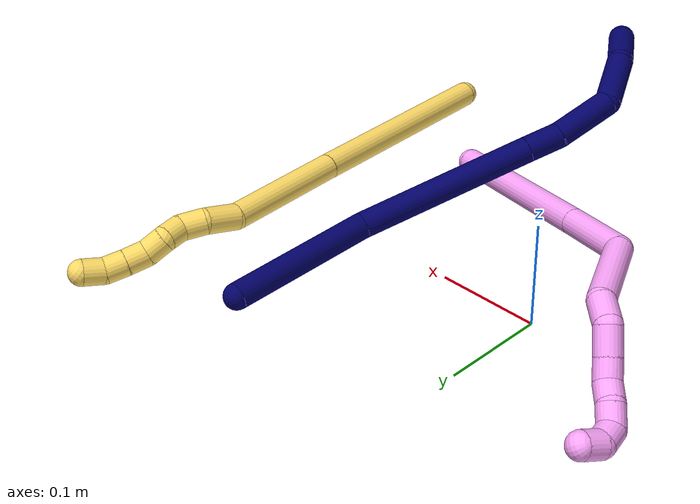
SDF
<sdf version="1.7">
 <world name="default">
  <model name="4">
   <static>0</static>
   <link name="4">
    <collision name="collision-cylinder-e_1_1_4">
     <pose>-0.05752 0.029003 0.070895 -0.388327 -0.644101 0.131037</pose>
     <geometry><cylinder><radius>0.0125</radius><length>0.191582</length></cylinder></geometry>
     <surface>
      <friction><ode><mu>1.16</mu><mu2>1.16</mu2><slip1>0</slip1><slip2>0</slip2></ode></friction>
      <contact><ode><kp>1e+06</kp><kd>1</kd><max_vel>0</max_vel><min_depth>0.001</min_depth></ode></contact>
     </surface>
    </collision>
    <visual name="visual-cylinder-e_1_1_4">
     <pose>-0.05752 0.029003 0.070895 -0.388327 -0.644101 0.131037</pose>
     <geometry><cylinder><radius>0.0125</radius><length>0.191582</length></cylinder></geometry>
     <material><ambient>1 0.65098 0.996078 1</ambient></material>
    </visual>
    <collision name="collision-cylinder-e_2_4_5">
     <pose>-0.136688 0.06893 0.168006 -0.394801 -0.651255 0.134857</pose>
     <geometry><cylinder><radius>0.0125</radius><length>0.071421</length></cylinder></geometry>
     <surface>
      <friction><ode><mu>1.16</mu><mu2>1.16</mu2><slip1>0</slip1><slip2>0</slip2></ode></friction>
      <contact><ode><kp>1e+06</kp><kd>1</kd><max_vel>0</max_vel><min_depth>0.001</min_depth></ode></contact>
     </surface>
    </collision>
    <visual name="visual-cylinder-e_2_4_5">
     <pose>-0.136688 0.06893 0.168006 -0.394801 -0.651255 0.134857</pose>
     <geometry><cylinder><radius>0.0125</radius><length>0.071421</length></cylinder></geometry>
     <material><ambient>1 0.65098 0.996078 1</ambient></material>
    </visual>
    <collision name="collision-cylinder-e_3_5_6">
     <pose>-0.183112 0.11282 0.20162 -1.35006 -0.632771 0.512597</pose>
     <geometry><cylinder><radius>0.0125</radius><length>0.083794</length></cylinder></geometry>
     <surface>
      <friction><ode><mu>1.16</mu><mu2>1.16</mu2><slip1>0</slip1><slip2>0</slip2></ode></friction>
      <contact><ode><kp>1e+06</kp><kd>1</kd><max_vel>0</max_vel><min_depth>0.001</min_depth></ode></contact>
     </surface>
    </collision>
    <visual name="visual-cylinder-e_3_5_6">
     <pose>-0.183112 0.11282 0.20162 -1.35006 -0.632771 0.512597</pose>
     <geometry><cylinder><radius>0.0125</radius><length>0.083794</length></cylinder></geometry>
     <material><ambient>1 0.65098 0.996078 1</ambient></material>
    </visual>
    <collision name="collision-cylinder-e_4_6_7">
     <pose>-0.219328 0.151917 0.213352 -0.955456 -0.989885 0.544987</pose>
     <geometry><cylinder><radius>0.0125</radius><length>0.027366</length></cylinder></geometry>
     <surface>
      <friction><ode><mu>1.16</mu><mu2>1.16</mu2><slip1>0</slip1><slip2>0</slip2></ode></friction>
      <contact><ode><kp>1e+06</kp><kd>1</kd><max_vel>0</max_vel><min_depth>0.001</min_depth></ode></contact>
     </surface>
    </collision>
    <visual name="visual-cylinder-e_4_6_7">
     <pose>-0.219328 0.151917 0.213352 -0.955456 -0.989885 0.544987</pose>
     <geometry><cylinder><radius>0.0125</radius><length>0.027366</length></cylinder></geometry>
     <material><ambient>1 0.65098 0.996078 1</ambient></material>
    </visual>
    <collision name="collision-cylinder-e_5_7_8">
     <pose>-0.243219 0.158774 0.214367 -2.92647 -1.30444 2.86068</pose>
     <geometry><cylinder><radius>0.0125</radius><length>0.025816</length></cylinder></geometry>
     <surface>
      <friction><ode><mu>1.16</mu><mu2>1.16</mu2><slip1>0</slip1><slip2>0</slip2></ode></friction>
      <contact><ode><kp>1e+06</kp><kd>1</kd><max_vel>0</max_vel><min_depth>0.001</min_depth></ode></contact>
     </surface>
    </collision>
    <visual name="visual-cylinder-e_5_7_8">
     <pose>-0.243219 0.158774 0.214367 -2.92647 -1.30444 2.86068</pose>
     <geometry><cylinder><radius>0.0125</radius><length>0.025816</length></cylinder></geometry>
     <material><ambient>1 0.65098 0.996078 1</ambient></material>
    </visual>
    <collision name="collision-cylinder-e_6_8_9">
     <pose>-0.265279 0.16061 0.208482 -2.733 -1.2876 2.60285</pose>
     <geometry><cylinder><radius>0.0125</radius><length>0.020012</length></cylinder></geometry>
     <surface>
      <friction><ode><mu>1.16</mu><mu2>1.16</mu2><slip1>0</slip1><slip2>0</slip2></ode></friction>
      <contact><ode><kp>1e+06</kp><kd>1</kd><max_vel>0</max_vel><min_depth>0.001</min_depth></ode></contact>
     </surface>
    </collision>
    <visual name="visual-cylinder-e_6_8_9">
     <pose>-0.265279 0.16061 0.208482 -2.733 -1.2876 2.60285</pose>
     <geometry><cylinder><radius>0.0125</radius><length>0.020012</length></cylinder></geometry>
     <material><ambient>1 0.65098 0.996078 1</ambient></material>
    </visual>
    <collision name="collision-cylinder-e_7_9_10">
     <pose>-0.283641 0.166108 0.207966 -1.13367 -1.06547 0.718041</pose>
     <geometry><cylinder><radius>0.0125</radius><length>0.020009</length></cylinder></geometry>
     <surface>
      <friction><ode><mu>1.16</mu><mu2>1.16</mu2><slip1>0</slip1><slip2>0</slip2></ode></friction>
      <contact><ode><kp>1e+06</kp><kd>1</kd><max_vel>0</max_vel><min_depth>0.001</min_depth></ode></contact>
     </surface>
    </collision>
    <visual name="visual-cylinder-e_7_9_10">
     <pose>-0.283641 0.166108 0.207966 -1.13367 -1.06547 0.718041</pose>
     <geometry><cylinder><radius>0.0125</radius><length>0.020009</length></cylinder></geometry>
     <material><ambient>1 0.65098 0.996078 1</ambient></material>
    </visual>
    <collision name="collision-cylinder-e_8_10_11">
     <pose>-0.302029 0.173048 0.209202 -1.87968 -1.2996 1.61011</pose>
     <geometry><cylinder><radius>0.0125</radius><length>0.02</length></cylinder></geometry>
     <surface>
      <friction><ode><mu>1.16</mu><mu2>1.16</mu2><slip1>0</slip1><slip2>0</slip2></ode></friction>
      <contact><ode><kp>1e+06</kp><kd>1</kd><max_vel>0</max_vel><min_depth>0.001</min_depth></ode></contact>
     </surface>
    </collision>
    <visual name="visual-cylinder-e_8_10_11">
     <pose>-0.302029 0.173048 0.209202 -1.87968 -1.2996 1.61011</pose>
     <geometry><cylinder><radius>0.0125</radius><length>0.02</length></cylinder></geometry>
     <material><ambient>1 0.65098 0.996078 1</ambient></material>
    </visual>
    <collision name="collision-cylinder-e_9_11_12">
     <pose>-0.316745 0.184208 0.208077 -1.60688 -0.533016 0.551645</pose>
     <geometry><cylinder><radius>0.0125</radius><length>0.02</length></cylinder></geometry>
     <surface>
      <friction><ode><mu>1.16</mu><mu2>1.16</mu2><slip1>0</slip1><slip2>0</slip2></ode></friction>
      <contact><ode><kp>1e+06</kp><kd>1</kd><max_vel>0</max_vel><min_depth>0.001</min_depth></ode></contact>
     </surface>
    </collision>
    <visual name="visual-cylinder-e_9_11_12">
     <pose>-0.316745 0.184208 0.208077 -1.60688 -0.533016 0.551645</pose>
     <geometry><cylinder><radius>0.0125</radius><length>0.02</length></cylinder></geometry>
     <material><ambient>1 0.65098 0.996078 1</ambient></material>
    </visual>
    <collision name="collision-cylinder-e_10_12_2">
     <pose>-0.321059 0.20252 0.205481 -1.80207 0.076853 -0.097024</pose>
     <geometry><cylinder><radius>0.0125</radius><length>0.02</length></cylinder></geometry>
     <surface>
      <friction><ode><mu>1.16</mu><mu2>1.16</mu2><slip1>0</slip1><slip2>0</slip2></ode></friction>
      <contact><ode><kp>1e+06</kp><kd>1</kd><max_vel>0</max_vel><min_depth>0.001</min_depth></ode></contact>
     </surface>
    </collision>
    <visual name="visual-cylinder-e_10_12_2">
     <pose>-0.321059 0.20252 0.205481 -1.80207 0.076853 -0.097024</pose>
     <geometry><cylinder><radius>0.0125</radius><length>0.02</length></cylinder></geometry>
     <material><ambient>1 0.65098 0.996078 1</ambient></material>
    </visual>
    <collision name="collision-sphere-2">
     <pose>-0.320291 0.212226 0.203196 0 -0 0</pose>
     <geometry><sphere><radius>0.0125</radius></sphere></geometry>
     <surface>
      <friction><ode><mu>1.16</mu><mu2>1.16</mu2><slip1>0</slip1><slip2>0</slip2></ode></friction>
      <contact><ode><kp>1e+06</kp><kd>1</kd><max_vel>0</max_vel><min_depth>0.001</min_depth></ode></contact>
     </surface>
    </collision>
    <visual name="visual-sphere-2">
     <pose>-0.320291 0.212226 0.203196 0 -0 0</pose>
     <geometry><sphere><radius>0.0125</radius></sphere></geometry>
     <material><ambient>1 0.65098 0.996078 1</ambient></material>
    </visual>
    <collision name="collision-sphere-12">
     <pose>-0.321827 0.192815 0.207766 0 -0 0</pose>
     <geometry><sphere><radius>0.0125</radius></sphere></geometry>
     <surface>
      <friction><ode><mu>1.16</mu><mu2>1.16</mu2><slip1>0</slip1><slip2>0</slip2></ode></friction>
      <contact><ode><kp>1e+06</kp><kd>1</kd><max_vel>0</max_vel><min_depth>0.001</min_depth></ode></contact>
     </surface>
    </collision>
    <visual name="visual-sphere-12">
     <pose>-0.321827 0.192815 0.207766 0 -0 0</pose>
     <geometry><sphere><radius>0.0125</radius></sphere></geometry>
     <material><ambient>1 0.65098 0.996078 1</ambient></material>
    </visual>
    <collision name="collision-sphere-11">
     <pose>-0.311664 0.175601 0.208388 0 -0 0</pose>
     <geometry><sphere><radius>0.0125</radius></sphere></geometry>
     <surface>
      <friction><ode><mu>1.16</mu><mu2>1.16</mu2><slip1>0</slip1><slip2>0</slip2></ode></friction>
      <contact><ode><kp>1e+06</kp><kd>1</kd><max_vel>0</max_vel><min_depth>0.001</min_depth></ode></contact>
     </surface>
    </collision>
    <visual name="visual-sphere-11">
     <pose>-0.311664 0.175601 0.208388 0 -0 0</pose>
     <geometry><sphere><radius>0.0125</radius></sphere></geometry>
     <material><ambient>1 0.65098 0.996078 1</ambient></material>
    </visual>
    <collision name="collision-sphere-10">
     <pose>-0.292395 0.170496 0.210017 0 -0 0</pose>
     <geometry><sphere><radius>0.0125</radius></sphere></geometry>
     <surface>
      <friction><ode><mu>1.16</mu><mu2>1.16</mu2><slip1>0</slip1><slip2>0</slip2></ode></friction>
      <contact><ode><kp>1e+06</kp><kd>1</kd><max_vel>0</max_vel><min_depth>0.001</min_depth></ode></contact>
     </surface>
    </collision>
    <visual name="visual-sphere-10">
     <pose>-0.292395 0.170496 0.210017 0 -0 0</pose>
     <geometry><sphere><radius>0.0125</radius></sphere></geometry>
     <material><ambient>1 0.65098 0.996078 1</ambient></material>
    </visual>
    <collision name="collision-sphere-9">
     <pose>-0.274886 0.161721 0.205916 0 -0 0</pose>
     <geometry><sphere><radius>0.0125</radius></sphere></geometry>
     <surface>
      <friction><ode><mu>1.16</mu><mu2>1.16</mu2><slip1>0</slip1><slip2>0</slip2></ode></friction>
      <contact><ode><kp>1e+06</kp><kd>1</kd><max_vel>0</max_vel><min_depth>0.001</min_depth></ode></contact>
     </surface>
    </collision>
    <visual name="visual-sphere-9">
     <pose>-0.274886 0.161721 0.205916 0 -0 0</pose>
     <geometry><sphere><radius>0.0125</radius></sphere></geometry>
     <material><ambient>1 0.65098 0.996078 1</ambient></material>
    </visual>
    <collision name="collision-sphere-4">
     <pose>-0.115041 0.058006 0.14179 0 -0 0</pose>
     <geometry><sphere><radius>0.0125</radius></sphere></geometry>
     <surface>
      <friction><ode><mu>1.16</mu><mu2>1.16</mu2><slip1>0</slip1><slip2>0</slip2></ode></friction>
      <contact><ode><kp>1e+06</kp><kd>1</kd><max_vel>0</max_vel><min_depth>0.001</min_depth></ode></contact>
     </surface>
    </collision>
    <visual name="visual-sphere-4">
     <pose>-0.115041 0.058006 0.14179 0 -0 0</pose>
     <geometry><sphere><radius>0.0125</radius></sphere></geometry>
     <material><ambient>1 0.65098 0.996078 1</ambient></material>
    </visual>
    <collision name="collision-sphere-1">
     <geometry><sphere><radius>0.0125</radius></sphere></geometry>
     <surface>
      <friction><ode><mu>1.16</mu><mu2>1.16</mu2><slip1>0</slip1><slip2>0</slip2></ode></friction>
      <contact><ode><kp>1e+06</kp><kd>1</kd><max_vel>0</max_vel><min_depth>0.001</min_depth></ode></contact>
     </surface>
    </collision>
    <visual name="visual-sphere-1">
     <geometry><sphere><radius>0.0125</radius></sphere></geometry>
     <material><ambient>1 0.65098 0.996078 1</ambient></material>
    </visual>
    <collision name="collision-sphere-8">
     <pose>-0.255671 0.159499 0.211048 0 -0 0</pose>
     <geometry><sphere><radius>0.0125</radius></sphere></geometry>
     <surface>
      <friction><ode><mu>1.16</mu><mu2>1.16</mu2><slip1>0</slip1><slip2>0</slip2></ode></friction>
      <contact><ode><kp>1e+06</kp><kd>1</kd><max_vel>0</max_vel><min_depth>0.001</min_depth></ode></contact>
     </surface>
    </collision>
    <visual name="visual-sphere-8">
     <pose>-0.255671 0.159499 0.211048 0 -0 0</pose>
     <geometry><sphere><radius>0.0125</radius></sphere></geometry>
     <material><ambient>1 0.65098 0.996078 1</ambient></material>
    </visual>
    <collision name="collision-sphere-5">
     <pose>-0.158335 0.079854 0.194223 0 -0 0</pose>
     <geometry><sphere><radius>0.0125</radius></sphere></geometry>
     <surface>
      <friction><ode><mu>1.16</mu><mu2>1.16</mu2><slip1>0</slip1><slip2>0</slip2></ode></friction>
      <contact><ode><kp>1e+06</kp><kd>1</kd><max_vel>0</max_vel><min_depth>0.001</min_depth></ode></contact>
     </surface>
    </collision>
    <visual name="visual-sphere-5">
     <pose>-0.158335 0.079854 0.194223 0 -0 0</pose>
     <geometry><sphere><radius>0.0125</radius></sphere></geometry>
     <material><ambient>1 0.65098 0.996078 1</ambient></material>
    </visual>
    <collision name="collision-sphere-6">
     <pose>-0.207889 0.145785 0.209017 0 -0 0</pose>
     <geometry><sphere><radius>0.0125</radius></sphere></geometry>
     <surface>
      <friction><ode><mu>1.16</mu><mu2>1.16</mu2><slip1>0</slip1><slip2>0</slip2></ode></friction>
      <contact><ode><kp>1e+06</kp><kd>1</kd><max_vel>0</max_vel><min_depth>0.001</min_depth></ode></contact>
     </surface>
    </collision>
    <visual name="visual-sphere-6">
     <pose>-0.207889 0.145785 0.209017 0 -0 0</pose>
     <geometry><sphere><radius>0.0125</radius></sphere></geometry>
     <material><ambient>1 0.65098 0.996078 1</ambient></material>
    </visual>
    <collision name="collision-sphere-7">
     <pose>-0.230766 0.158048 0.217686 0 -0 0</pose>
     <geometry><sphere><radius>0.0125</radius></sphere></geometry>
     <surface>
      <friction><ode><mu>1.16</mu><mu2>1.16</mu2><slip1>0</slip1><slip2>0</slip2></ode></friction>
      <contact><ode><kp>1e+06</kp><kd>1</kd><max_vel>0</max_vel><min_depth>0.001</min_depth></ode></contact>
     </surface>
    </collision>
    <visual name="visual-sphere-7">
     <pose>-0.230766 0.158048 0.217686 0 -0 0</pose>
     <geometry><sphere><radius>0.0125</radius></sphere></geometry>
     <material><ambient>1 0.65098 0.996078 1</ambient></material>
    </visual>
    <inertial>
     <pose>-0.156376 0.091846 0.149274 0 -0 0</pose>
     <mass>0.5</mass>
     <inertia><ixx>0.0006</ixx><ixy>0</ixy><ixz>0</ixz><iyy>0.000732</iyy><iyz>0</iyz><izz>0.000196</izz></inertia>
    </inertial>
   </link>
   <pose>0.204087 -0.155468 0.012459 0.586453 -0.717573 -0.516094</pose>
  </model>
  <model name="5">
   <static>0</static>
   <link name="5">
    <collision name="collision-cylinder-e_1_1_4">
     <pose>0.074329 0.047886 -0.064728 -2.50465 0.745466 -1.74054</pose>
     <geometry><cylinder><radius>0.0125</radius><length>0.219158</length></cylinder></geometry>
     <surface>
      <friction><ode><mu>1.16</mu><mu2>1.16</mu2><slip1>0</slip1><slip2>0</slip2></ode></friction>
      <contact><ode><kp>1e+06</kp><kd>1</kd><max_vel>0</max_vel><min_depth>0.001</min_depth></ode></contact>
     </surface>
    </collision>
    <visual name="visual-cylinder-e_1_1_4">
     <pose>0.074329 0.047886 -0.064728 -2.50465 0.745466 -1.74054</pose>
     <geometry><cylinder><radius>0.0125</radius><length>0.219158</length></cylinder></geometry>
     <material><ambient>1 0.858824 0.4 1</ambient></material>
    </visual>
    <collision name="collision-cylinder-e_2_4_5">
     <pose>0.189449 0.124649 -0.165294 -2.46334 0.725193 -1.64347</pose>
     <geometry><cylinder><radius>0.0125</radius><length>0.123</length></cylinder></geometry>
     <surface>
      <friction><ode><mu>1.16</mu><mu2>1.16</mu2><slip1>0</slip1><slip2>0</slip2></ode></friction>
      <contact><ode><kp>1e+06</kp><kd>1</kd><max_vel>0</max_vel><min_depth>0.001</min_depth></ode></contact>
     </surface>
    </collision>
    <visual name="visual-cylinder-e_2_4_5">
     <pose>0.189449 0.124649 -0.165294 -2.46334 0.725193 -1.64347</pose>
     <geometry><cylinder><radius>0.0125</radius><length>0.123</length></cylinder></geometry>
     <material><ambient>1 0.858824 0.4 1</ambient></material>
    </visual>
    <collision name="collision-cylinder-e_3_5_6">
     <pose>0.237025 0.160446 -0.214024 -2.64901 0.434123 -1.44021</pose>
     <geometry><cylinder><radius>0.0125</radius><length>0.032256</length></cylinder></geometry>
     <surface>
      <friction><ode><mu>1.16</mu><mu2>1.16</mu2><slip1>0</slip1><slip2>0</slip2></ode></friction>
      <contact><ode><kp>1e+06</kp><kd>1</kd><max_vel>0</max_vel><min_depth>0.001</min_depth></ode></contact>
     </surface>
    </collision>
    <visual name="visual-cylinder-e_3_5_6">
     <pose>0.237025 0.160446 -0.214024 -2.64901 0.434123 -1.44021</pose>
     <geometry><cylinder><radius>0.0125</radius><length>0.032256</length></cylinder></geometry>
     <material><ambient>1 0.858824 0.4 1</ambient></material>
    </visual>
    <collision name="collision-cylinder-e_4_6_7">
     <pose>0.246612 0.175358 -0.235014 -2.36278 0.24159 -0.575203</pose>
     <geometry><cylinder><radius>0.0125</radius><length>0.023435</length></cylinder></geometry>
     <surface>
      <friction><ode><mu>1.16</mu><mu2>1.16</mu2><slip1>0</slip1><slip2>0</slip2></ode></friction>
      <contact><ode><kp>1e+06</kp><kd>1</kd><max_vel>0</max_vel><min_depth>0.001</min_depth></ode></contact>
     </surface>
    </collision>
    <visual name="visual-cylinder-e_4_6_7">
     <pose>0.246612 0.175358 -0.235014 -2.36278 0.24159 -0.575203</pose>
     <geometry><cylinder><radius>0.0125</radius><length>0.023435</length></cylinder></geometry>
     <material><ambient>1 0.858824 0.4 1</ambient></material>
    </visual>
    <collision name="collision-cylinder-e_5_7_8">
     <pose>0.25657 0.188376 -0.248149 -2.35723 0.788171 -1.57618</pose>
     <geometry><cylinder><radius>0.0125</radius><length>0.020182</length></cylinder></geometry>
     <surface>
      <friction><ode><mu>1.16</mu><mu2>1.16</mu2><slip1>0</slip1><slip2>0</slip2></ode></friction>
      <contact><ode><kp>1e+06</kp><kd>1</kd><max_vel>0</max_vel><min_depth>0.001</min_depth></ode></contact>
     </surface>
    </collision>
    <visual name="visual-cylinder-e_5_7_8">
     <pose>0.25657 0.188376 -0.248149 -2.35723 0.788171 -1.57618</pose>
     <geometry><cylinder><radius>0.0125</radius><length>0.020182</length></cylinder></geometry>
     <material><ambient>1 0.858824 0.4 1</ambient></material>
    </visual>
    <collision name="collision-cylinder-e_6_8_9">
     <pose>0.266111 0.202845 -0.256055 -1.86583 0.237199 -0.318776</pose>
     <geometry><cylinder><radius>0.0125</radius><length>0.020308</length></cylinder></geometry>
     <surface>
      <friction><ode><mu>1.16</mu><mu2>1.16</mu2><slip1>0</slip1><slip2>0</slip2></ode></friction>
      <contact><ode><kp>1e+06</kp><kd>1</kd><max_vel>0</max_vel><min_depth>0.001</min_depth></ode></contact>
     </surface>
    </collision>
    <visual name="visual-cylinder-e_6_8_9">
     <pose>0.266111 0.202845 -0.256055 -1.86583 0.237199 -0.318776</pose>
     <geometry><cylinder><radius>0.0125</radius><length>0.020308</length></cylinder></geometry>
     <material><ambient>1 0.858824 0.4 1</ambient></material>
    </visual>
    <collision name="collision-cylinder-e_7_9_10">
     <pose>0.271912 0.22005 -0.264937 -2.22985 0.334715 -0.663618</pose>
     <geometry><cylinder><radius>0.0125</radius><length>0.02079</length></cylinder></geometry>
     <surface>
      <friction><ode><mu>1.16</mu><mu2>1.16</mu2><slip1>0</slip1><slip2>0</slip2></ode></friction>
      <contact><ode><kp>1e+06</kp><kd>1</kd><max_vel>0</max_vel><min_depth>0.001</min_depth></ode></contact>
     </surface>
    </collision>
    <visual name="visual-cylinder-e_7_9_10">
     <pose>0.271912 0.22005 -0.264937 -2.22985 0.334715 -0.663618</pose>
     <geometry><cylinder><radius>0.0125</radius><length>0.02079</length></cylinder></geometry>
     <material><ambient>1 0.858824 0.4 1</ambient></material>
    </visual>
    <collision name="collision-cylinder-e_8_10_11">
     <pose>0.278278 0.235321 -0.277228 -2.26718 0.292822 -0.611269</pose>
     <geometry><cylinder><radius>0.0125</radius><length>0.020448</length></cylinder></geometry>
     <surface>
      <friction><ode><mu>1.16</mu><mu2>1.16</mu2><slip1>0</slip1><slip2>0</slip2></ode></friction>
      <contact><ode><kp>1e+06</kp><kd>1</kd><max_vel>0</max_vel><min_depth>0.001</min_depth></ode></contact>
     </surface>
    </collision>
    <visual name="visual-cylinder-e_8_10_11">
     <pose>0.278278 0.235321 -0.277228 -2.26718 0.292822 -0.611269</pose>
     <geometry><cylinder><radius>0.0125</radius><length>0.020448</length></cylinder></geometry>
     <material><ambient>1 0.858824 0.4 1</ambient></material>
    </visual>
    <collision name="collision-cylinder-e_9_11_2">
     <pose>0.283519 0.247959 -0.292036 -2.60026 0.226118 -0.776823</pose>
     <geometry><cylinder><radius>0.0125</radius><length>0.020424</length></cylinder></geometry>
     <surface>
      <friction><ode><mu>1.16</mu><mu2>1.16</mu2><slip1>0</slip1><slip2>0</slip2></ode></friction>
      <contact><ode><kp>1e+06</kp><kd>1</kd><max_vel>0</max_vel><min_depth>0.001</min_depth></ode></contact>
     </surface>
    </collision>
    <visual name="visual-cylinder-e_9_11_2">
     <pose>0.283519 0.247959 -0.292036 -2.60026 0.226118 -0.776823</pose>
     <geometry><cylinder><radius>0.0125</radius><length>0.020424</length></cylinder></geometry>
     <material><ambient>1 0.858824 0.4 1</ambient></material>
    </visual>
    <collision name="collision-sphere-2">
     <pose>0.285808 0.253087 -0.300566 0 -0 0</pose>
     <geometry><sphere><radius>0.0125</radius></sphere></geometry>
     <surface>
      <friction><ode><mu>1.16</mu><mu2>1.16</mu2><slip1>0</slip1><slip2>0</slip2></ode></friction>
      <contact><ode><kp>1e+06</kp><kd>1</kd><max_vel>0</max_vel><min_depth>0.001</min_depth></ode></contact>
     </surface>
    </collision>
    <visual name="visual-sphere-2">
     <pose>0.285808 0.253087 -0.300566 0 -0 0</pose>
     <geometry><sphere><radius>0.0125</radius></sphere></geometry>
     <material><ambient>1 0.858824 0.4 1</ambient></material>
    </visual>
    <collision name="collision-sphere-11">
     <pose>0.281229 0.242831 -0.283507 0 -0 0</pose>
     <geometry><sphere><radius>0.0125</radius></sphere></geometry>
     <surface>
      <friction><ode><mu>1.16</mu><mu2>1.16</mu2><slip1>0</slip1><slip2>0</slip2></ode></friction>
      <contact><ode><kp>1e+06</kp><kd>1</kd><max_vel>0</max_vel><min_depth>0.001</min_depth></ode></contact>
     </surface>
    </collision>
    <visual name="visual-sphere-11">
     <pose>0.281229 0.242831 -0.283507 0 -0 0</pose>
     <geometry><sphere><radius>0.0125</radius></sphere></geometry>
     <material><ambient>1 0.858824 0.4 1</ambient></material>
    </visual>
    <collision name="collision-sphere-10">
     <pose>0.275326 0.227811 -0.270949 0 -0 0</pose>
     <geometry><sphere><radius>0.0125</radius></sphere></geometry>
     <surface>
      <friction><ode><mu>1.16</mu><mu2>1.16</mu2><slip1>0</slip1><slip2>0</slip2></ode></friction>
      <contact><ode><kp>1e+06</kp><kd>1</kd><max_vel>0</max_vel><min_depth>0.001</min_depth></ode></contact>
     </surface>
    </collision>
    <visual name="visual-sphere-10">
     <pose>0.275326 0.227811 -0.270949 0 -0 0</pose>
     <geometry><sphere><radius>0.0125</radius></sphere></geometry>
     <material><ambient>1 0.858824 0.4 1</ambient></material>
    </visual>
    <collision name="collision-sphere-9">
     <pose>0.268497 0.212288 -0.258925 0 -0 0</pose>
     <geometry><sphere><radius>0.0125</radius></sphere></geometry>
     <surface>
      <friction><ode><mu>1.16</mu><mu2>1.16</mu2><slip1>0</slip1><slip2>0</slip2></ode></friction>
      <contact><ode><kp>1e+06</kp><kd>1</kd><max_vel>0</max_vel><min_depth>0.001</min_depth></ode></contact>
     </surface>
    </collision>
    <visual name="visual-sphere-9">
     <pose>0.268497 0.212288 -0.258925 0 -0 0</pose>
     <geometry><sphere><radius>0.0125</radius></sphere></geometry>
     <material><ambient>1 0.858824 0.4 1</ambient></material>
    </visual>
    <collision name="collision-sphere-4">
     <pose>0.148658 0.095772 -0.129456 0 -0 0</pose>
     <geometry><sphere><radius>0.0125</radius></sphere></geometry>
     <surface>
      <friction><ode><mu>1.16</mu><mu2>1.16</mu2><slip1>0</slip1><slip2>0</slip2></ode></friction>
      <contact><ode><kp>1e+06</kp><kd>1</kd><max_vel>0</max_vel><min_depth>0.001</min_depth></ode></contact>
     </surface>
    </collision>
    <visual name="visual-sphere-4">
     <pose>0.148658 0.095772 -0.129456 0 -0 0</pose>
     <geometry><sphere><radius>0.0125</radius></sphere></geometry>
     <material><ambient>1 0.858824 0.4 1</ambient></material>
    </visual>
    <collision name="collision-sphere-1">
     <geometry><sphere><radius>0.0125</radius></sphere></geometry>
     <surface>
      <friction><ode><mu>1.16</mu><mu2>1.16</mu2><slip1>0</slip1><slip2>0</slip2></ode></friction>
      <contact><ode><kp>1e+06</kp><kd>1</kd><max_vel>0</max_vel><min_depth>0.001</min_depth></ode></contact>
     </surface>
    </collision>
    <visual name="visual-sphere-1">
     <geometry><sphere><radius>0.0125</radius></sphere></geometry>
     <material><ambient>1 0.858824 0.4 1</ambient></material>
    </visual>
    <collision name="collision-sphere-8">
     <pose>0.263725 0.193402 -0.253185 0 -0 0</pose>
     <geometry><sphere><radius>0.0125</radius></sphere></geometry>
     <surface>
      <friction><ode><mu>1.16</mu><mu2>1.16</mu2><slip1>0</slip1><slip2>0</slip2></ode></friction>
      <contact><ode><kp>1e+06</kp><kd>1</kd><max_vel>0</max_vel><min_depth>0.001</min_depth></ode></contact>
     </surface>
    </collision>
    <visual name="visual-sphere-8">
     <pose>0.263725 0.193402 -0.253185 0 -0 0</pose>
     <geometry><sphere><radius>0.0125</radius></sphere></geometry>
     <material><ambient>1 0.858824 0.4 1</ambient></material>
    </visual>
    <collision name="collision-sphere-5">
     <pose>0.230241 0.153527 -0.201132 0 -0 0</pose>
     <geometry><sphere><radius>0.0125</radius></sphere></geometry>
     <surface>
      <friction><ode><mu>1.16</mu><mu2>1.16</mu2><slip1>0</slip1><slip2>0</slip2></ode></friction>
      <contact><ode><kp>1e+06</kp><kd>1</kd><max_vel>0</max_vel><min_depth>0.001</min_depth></ode></contact>
     </surface>
    </collision>
    <visual name="visual-sphere-5">
     <pose>0.230241 0.153527 -0.201132 0 -0 0</pose>
     <geometry><sphere><radius>0.0125</radius></sphere></geometry>
     <material><ambient>1 0.858824 0.4 1</ambient></material>
    </visual>
    <collision name="collision-sphere-6">
     <pose>0.243808 0.167366 -0.226916 0 -0 0</pose>
     <geometry><sphere><radius>0.0125</radius></sphere></geometry>
     <surface>
      <friction><ode><mu>1.16</mu><mu2>1.16</mu2><slip1>0</slip1><slip2>0</slip2></ode></friction>
      <contact><ode><kp>1e+06</kp><kd>1</kd><max_vel>0</max_vel><min_depth>0.001</min_depth></ode></contact>
     </surface>
    </collision>
    <visual name="visual-sphere-6">
     <pose>0.243808 0.167366 -0.226916 0 -0 0</pose>
     <geometry><sphere><radius>0.0125</radius></sphere></geometry>
     <material><ambient>1 0.858824 0.4 1</ambient></material>
    </visual>
    <collision name="collision-sphere-7">
     <pose>0.249415 0.18335 -0.243112 0 -0 0</pose>
     <geometry><sphere><radius>0.0125</radius></sphere></geometry>
     <surface>
      <friction><ode><mu>1.16</mu><mu2>1.16</mu2><slip1>0</slip1><slip2>0</slip2></ode></friction>
      <contact><ode><kp>1e+06</kp><kd>1</kd><max_vel>0</max_vel><min_depth>0.001</min_depth></ode></contact>
     </surface>
    </collision>
    <visual name="visual-sphere-7">
     <pose>0.249415 0.18335 -0.243112 0 -0 0</pose>
     <geometry><sphere><radius>0.0125</radius></sphere></geometry>
     <material><ambient>1 0.858824 0.4 1</ambient></material>
    </visual>
    <inertial>
     <pose>0.161466 0.114967 -0.148554 0 -0 0</pose>
     <mass>0.5</mass>
     <inertia>
      <ixx>-0.000859</ixx>
      <ixy>0</ixy>
      <ixz>0</ixz>
      <iyy>-0.000204</iyy>
      <iyz>0</iyz>
      <izz>-0.001206</izz>
     </inertia>
    </inertial>
   </link>
   <pose>0.295366 -0.24842 0.01988 -2.26301 0.005678 2.45924</pose>
  </model>
  <model name="7">
   <static>0</static>
   <link name="7">
    <collision name="collision-cylinder-e_1_1_4">
     <pose>-0.020251 -0.069093 -0.006422 1.66348 -0.283957 -0.311151</pose>
     <geometry><cylinder><radius>0.0125</radius><length>0.144571</length></cylinder></geometry>
     <surface>
      <friction><ode><mu>1.16</mu><mu2>1.16</mu2><slip1>0</slip1><slip2>0</slip2></ode></friction>
      <contact><ode><kp>1e+06</kp><kd>1</kd><max_vel>0</max_vel><min_depth>0.001</min_depth></ode></contact>
     </surface>
    </collision>
    <visual name="visual-cylinder-e_1_1_4">
     <pose>-0.020251 -0.069093 -0.006422 1.66348 -0.283957 -0.311151</pose>
     <geometry><cylinder><radius>0.0125</radius><length>0.144571</length></cylinder></geometry>
     <material><ambient>0.003922 0 0.403922 1</ambient></material>
    </visual>
    <collision name="collision-cylinder-e_2_4_5">
     <pose>-0.093062 -0.205007 -0.025154 1.75296 -0.658405 -0.778732</pose>
     <geometry><cylinder><radius>0.0125</radius><length>0.171803</length></cylinder></geometry>
     <surface>
      <friction><ode><mu>1.16</mu><mu2>1.16</mu2><slip1>0</slip1><slip2>0</slip2></ode></friction>
      <contact><ode><kp>1e+06</kp><kd>1</kd><max_vel>0</max_vel><min_depth>0.001</min_depth></ode></contact>
     </surface>
    </collision>
    <visual name="visual-cylinder-e_2_4_5">
     <pose>-0.093062 -0.205007 -0.025154 1.75296 -0.658405 -0.778732</pose>
     <geometry><cylinder><radius>0.0125</radius><length>0.171803</length></cylinder></geometry>
     <material><ambient>0.003922 0 0.403922 1</ambient></material>
    </visual>
    <collision name="collision-cylinder-e_3_5_6">
     <pose>-0.156063 -0.285164 -0.040091 1.76537 -0.65504 -0.783747</pose>
     <geometry><cylinder><radius>0.0125</radius><length>0.03428</length></cylinder></geometry>
     <surface>
      <friction><ode><mu>1.16</mu><mu2>1.16</mu2><slip1>0</slip1><slip2>0</slip2></ode></friction>
      <contact><ode><kp>1e+06</kp><kd>1</kd><max_vel>0</max_vel><min_depth>0.001</min_depth></ode></contact>
     </surface>
    </collision>
    <visual name="visual-cylinder-e_3_5_6">
     <pose>-0.156063 -0.285164 -0.040091 1.76537 -0.65504 -0.783747</pose>
     <geometry><cylinder><radius>0.0125</radius><length>0.03428</length></cylinder></geometry>
     <material><ambient>0.003922 0 0.403922 1</ambient></material>
    </visual>
    <collision name="collision-cylinder-e_4_6_7">
     <pose>-0.184337 -0.320994 -0.042249 1.54992 -0.670225 -0.657364</pose>
     <geometry><cylinder><radius>0.0125</radius><length>0.057417</length></cylinder></geometry>
     <surface>
      <friction><ode><mu>1.16</mu><mu2>1.16</mu2><slip1>0</slip1><slip2>0</slip2></ode></friction>
      <contact><ode><kp>1e+06</kp><kd>1</kd><max_vel>0</max_vel><min_depth>0.001</min_depth></ode></contact>
     </surface>
    </collision>
    <visual name="visual-cylinder-e_4_6_7">
     <pose>-0.184337 -0.320994 -0.042249 1.54992 -0.670225 -0.657364</pose>
     <geometry><cylinder><radius>0.0125</radius><length>0.057417</length></cylinder></geometry>
     <material><ambient>0.003922 0 0.403922 1</ambient></material>
    </visual>
    <collision name="collision-cylinder-e_5_7_8">
     <pose>-0.206316 -0.364829 -0.029366 1.04398 -0.166372 -0.095846</pose>
     <geometry><cylinder><radius>0.0125</radius><length>0.05007</length></cylinder></geometry>
     <surface>
      <friction><ode><mu>1.16</mu><mu2>1.16</mu2><slip1>0</slip1><slip2>0</slip2></ode></friction>
      <contact><ode><kp>1e+06</kp><kd>1</kd><max_vel>0</max_vel><min_depth>0.001</min_depth></ode></contact>
     </surface>
    </collision>
    <visual name="visual-cylinder-e_5_7_8">
     <pose>-0.206316 -0.364829 -0.029366 1.04398 -0.166372 -0.095846</pose>
     <geometry><cylinder><radius>0.0125</radius><length>0.05007</length></cylinder></geometry>
     <material><ambient>0.003922 0 0.403922 1</ambient></material>
    </visual>
    <collision name="collision-cylinder-e_6_8_2">
     <pose>-0.205619 -0.405142 -0.009558 1.19914 0.233486 0.159976</pose>
     <geometry><cylinder><radius>0.0125</radius><length>0.041859</length></cylinder></geometry>
     <surface>
      <friction><ode><mu>1.16</mu><mu2>1.16</mu2><slip1>0</slip1><slip2>0</slip2></ode></friction>
      <contact><ode><kp>1e+06</kp><kd>1</kd><max_vel>0</max_vel><min_depth>0.001</min_depth></ode></contact>
     </surface>
    </collision>
    <visual name="visual-cylinder-e_6_8_2">
     <pose>-0.205619 -0.405142 -0.009558 1.19914 0.233486 0.159976</pose>
     <geometry><cylinder><radius>0.0125</radius><length>0.041859</length></cylinder></geometry>
     <material><ambient>0.003922 0 0.403922 1</ambient></material>
    </visual>
    <collision name="collision-sphere-2">
     <pose>-0.200777 -0.424113 -0.002164 0 -0 0</pose>
     <geometry><sphere><radius>0.0125</radius></sphere></geometry>
     <surface>
      <friction><ode><mu>1.16</mu><mu2>1.16</mu2><slip1>0</slip1><slip2>0</slip2></ode></friction>
      <contact><ode><kp>1e+06</kp><kd>1</kd><max_vel>0</max_vel><min_depth>0.001</min_depth></ode></contact>
     </surface>
    </collision>
    <visual name="visual-sphere-2">
     <pose>-0.200777 -0.424113 -0.002164 0 -0 0</pose>
     <geometry><sphere><radius>0.0125</radius></sphere></geometry>
     <material><ambient>0.003922 0 0.403922 1</ambient></material>
    </visual>
    <collision name="collision-sphere-4">
     <pose>-0.040503 -0.138186 -0.012844 0 -0 0</pose>
     <geometry><sphere><radius>0.0125</radius></sphere></geometry>
     <surface>
      <friction><ode><mu>1.16</mu><mu2>1.16</mu2><slip1>0</slip1><slip2>0</slip2></ode></friction>
      <contact><ode><kp>1e+06</kp><kd>1</kd><max_vel>0</max_vel><min_depth>0.001</min_depth></ode></contact>
     </surface>
    </collision>
    <visual name="visual-sphere-4">
     <pose>-0.040503 -0.138186 -0.012844 0 -0 0</pose>
     <geometry><sphere><radius>0.0125</radius></sphere></geometry>
     <material><ambient>0.003922 0 0.403922 1</ambient></material>
    </visual>
    <collision name="collision-sphere-1">
     <geometry><sphere><radius>0.0125</radius></sphere></geometry>
     <surface>
      <friction><ode><mu>1.16</mu><mu2>1.16</mu2><slip1>0</slip1><slip2>0</slip2></ode></friction>
      <contact><ode><kp>1e+06</kp><kd>1</kd><max_vel>0</max_vel><min_depth>0.001</min_depth></ode></contact>
     </surface>
    </collision>
    <visual name="visual-sphere-1">
     <geometry><sphere><radius>0.0125</radius></sphere></geometry>
     <material><ambient>0.003922 0 0.403922 1</ambient></material>
    </visual>
    <collision name="collision-sphere-8">
     <pose>-0.210462 -0.38617 -0.016953 0 -0 0</pose>
     <geometry><sphere><radius>0.0125</radius></sphere></geometry>
     <surface>
      <friction><ode><mu>1.16</mu><mu2>1.16</mu2><slip1>0</slip1><slip2>0</slip2></ode></friction>
      <contact><ode><kp>1e+06</kp><kd>1</kd><max_vel>0</max_vel><min_depth>0.001</min_depth></ode></contact>
     </surface>
    </collision>
    <visual name="visual-sphere-8">
     <pose>-0.210462 -0.38617 -0.016953 0 -0 0</pose>
     <geometry><sphere><radius>0.0125</radius></sphere></geometry>
     <material><ambient>0.003922 0 0.403922 1</ambient></material>
    </visual>
    <collision name="collision-sphere-5">
     <pose>-0.145621 -0.271828 -0.037463 0 -0 0</pose>
     <geometry><sphere><radius>0.0125</radius></sphere></geometry>
     <surface>
      <friction><ode><mu>1.16</mu><mu2>1.16</mu2><slip1>0</slip1><slip2>0</slip2></ode></friction>
      <contact><ode><kp>1e+06</kp><kd>1</kd><max_vel>0</max_vel><min_depth>0.001</min_depth></ode></contact>
     </surface>
    </collision>
    <visual name="visual-sphere-5">
     <pose>-0.145621 -0.271828 -0.037463 0 -0 0</pose>
     <geometry><sphere><radius>0.0125</radius></sphere></geometry>
     <material><ambient>0.003922 0 0.403922 1</ambient></material>
    </visual>
    <collision name="collision-sphere-6">
     <pose>-0.166504 -0.2985 -0.042719 0 -0 0</pose>
     <geometry><sphere><radius>0.0125</radius></sphere></geometry>
     <surface>
      <friction><ode><mu>1.16</mu><mu2>1.16</mu2><slip1>0</slip1><slip2>0</slip2></ode></friction>
      <contact><ode><kp>1e+06</kp><kd>1</kd><max_vel>0</max_vel><min_depth>0.001</min_depth></ode></contact>
     </surface>
    </collision>
    <visual name="visual-sphere-6">
     <pose>-0.166504 -0.2985 -0.042719 0 -0 0</pose>
     <geometry><sphere><radius>0.0125</radius></sphere></geometry>
     <material><ambient>0.003922 0 0.403922 1</ambient></material>
    </visual>
    <collision name="collision-sphere-7">
     <pose>-0.20217 -0.343487 -0.04178 0 -0 0</pose>
     <geometry><sphere><radius>0.0125</radius></sphere></geometry>
     <surface>
      <friction><ode><mu>1.16</mu><mu2>1.16</mu2><slip1>0</slip1><slip2>0</slip2></ode></friction>
      <contact><ode><kp>1e+06</kp><kd>1</kd><max_vel>0</max_vel><min_depth>0.001</min_depth></ode></contact>
     </surface>
    </collision>
    <visual name="visual-sphere-7">
     <pose>-0.20217 -0.343487 -0.04178 0 -0 0</pose>
     <geometry><sphere><radius>0.0125</radius></sphere></geometry>
     <material><ambient>0.003922 0 0.403922 1</ambient></material>
    </visual>
    <inertial>
     <pose>-0.107574 -0.217283 -0.021841 0 -0 0</pose>
     <mass>0.5</mass>
     <inertia>
      <ixx>0.000169</ixx>
      <ixy>0</ixy>
      <ixz>0</ixz>
      <iyy>-0.000215</iyy>
      <iyz>0</iyz>
      <izz>0.000964</izz>
     </inertia>
    </inertial>
   </link>
   <pose>0.19955 0.160748 0.011497 0.041975 0.712612 0.217272</pose>
  </model>
 </world>
</sdf>
